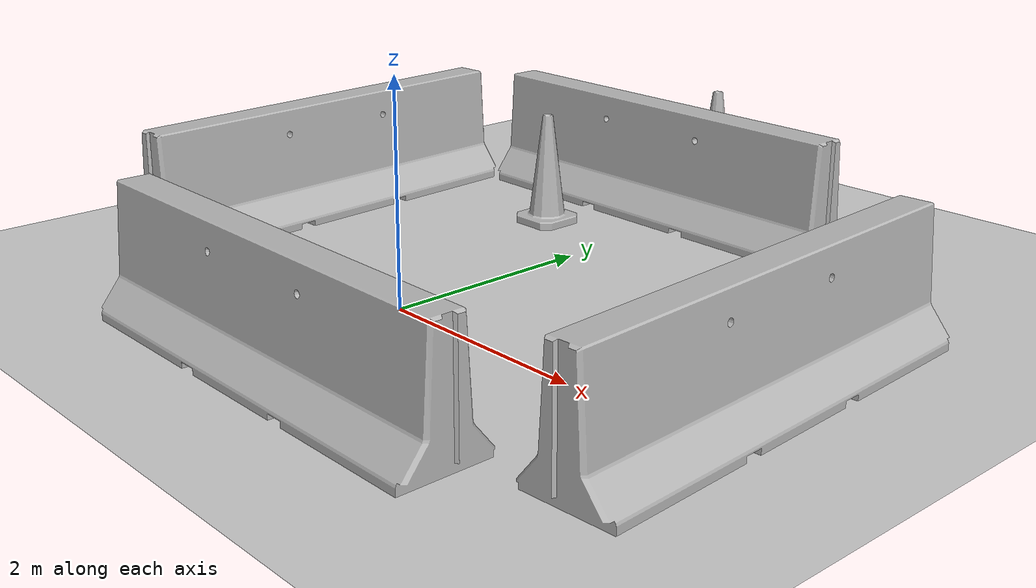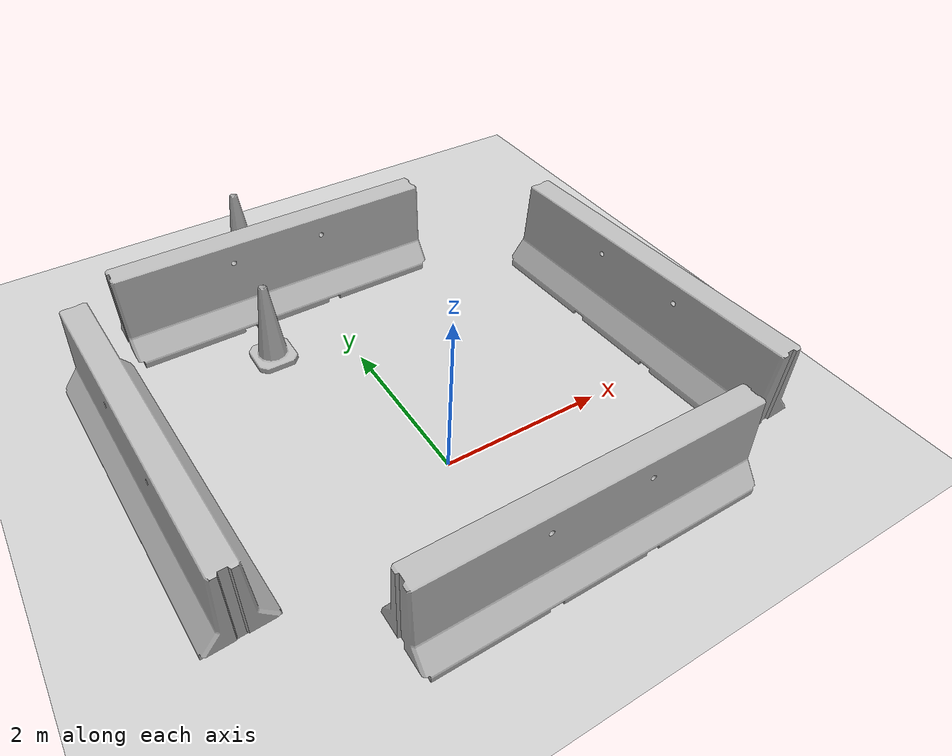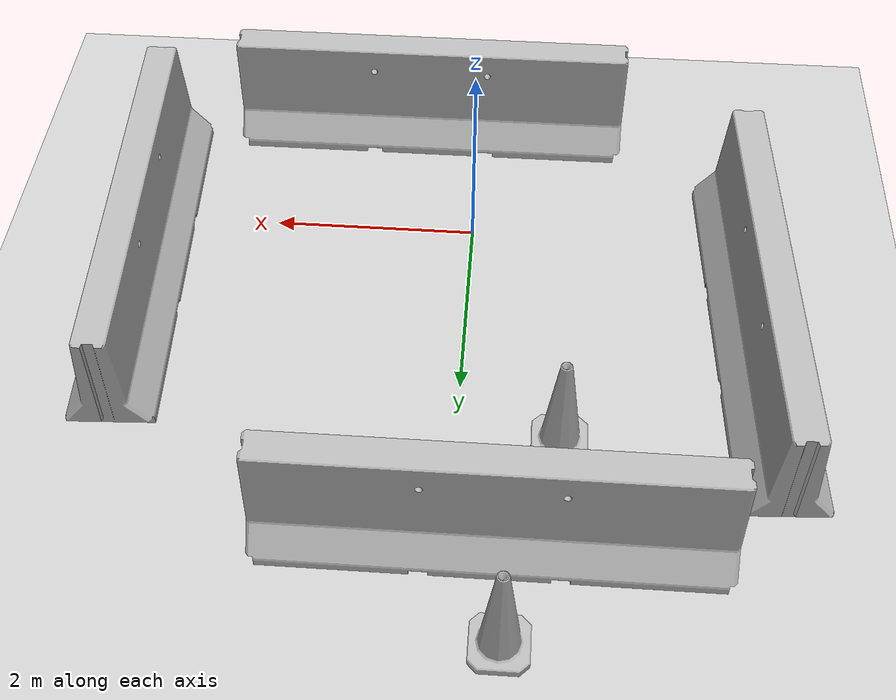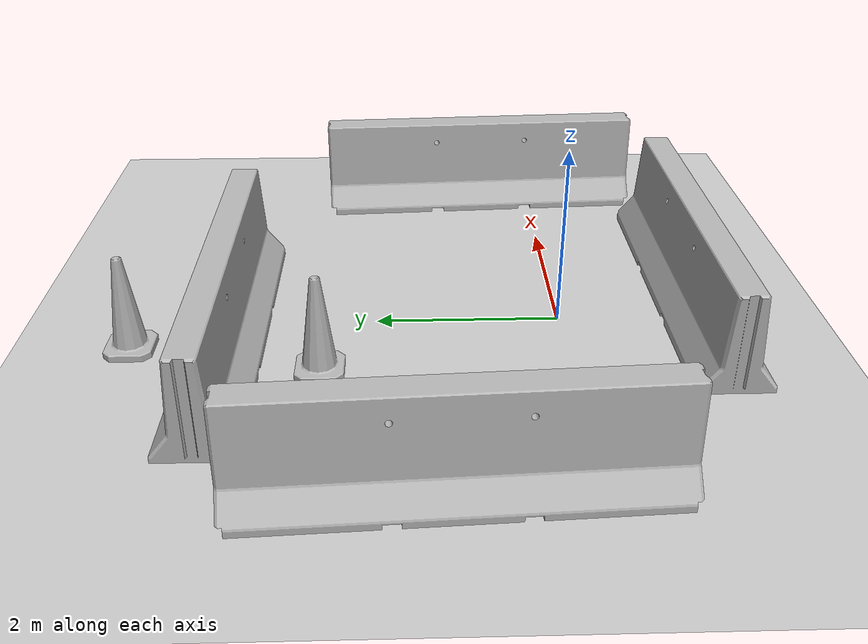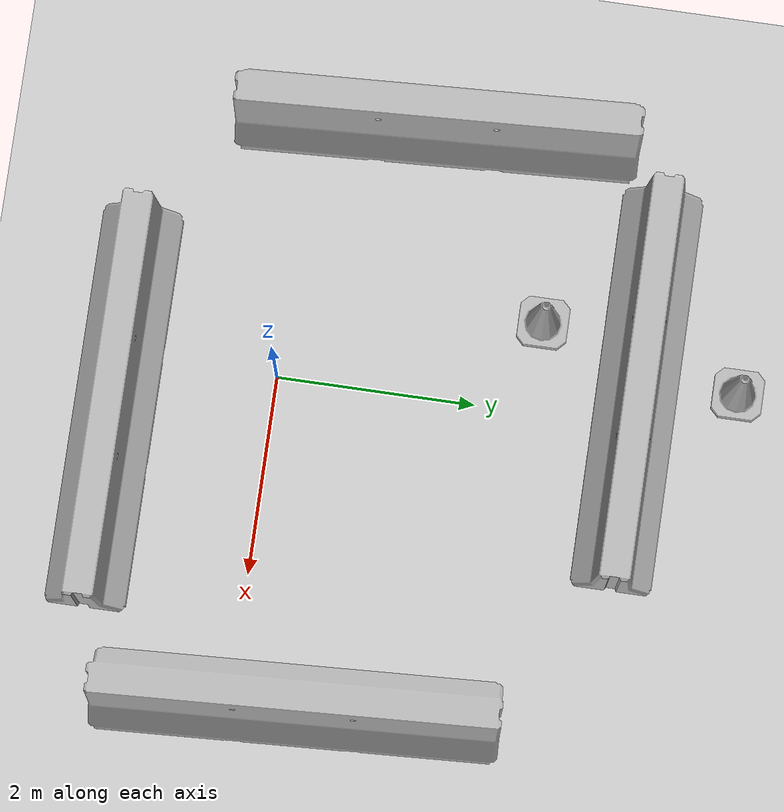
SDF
<sdf version="1.7">
 <world name="default">
  <light name="sun" type="directional">
   <pose>0 0 10 0 -0 0</pose>
   <diffuse>0.8 0.8 0.8 1</diffuse>
   <specular>0.2 0.2 0.2 1</specular>
   <attenuation>
    <range>1000</range>
    <constant>0.9</constant>
    <linear>0.01</linear>
    <quadratic>0.001</quadratic>
   </attenuation>
   <direction>-0.5 0.1 -0.9</direction>
   <spot><inner_angle>0</inner_angle><outer_angle>0</outer_angle><falloff>0</falloff></spot>
  </light>
  <model name="ground_plane">
   <static>1</static>
   <link name="link">
    <collision name="collision">
     <geometry><plane><normal>0 0 1</normal><size>100 100</size></plane></geometry>
     <surface>
      <contact><collide_bitmask>65535</collide_bitmask></contact>
      <friction><ode><mu>100</mu><mu2>50</mu2></ode></friction>
     </surface>
    </collision>
    <visual name="visual">
     <cast_shadows>0</cast_shadows>
     <geometry><plane><normal>0 0 1</normal><size>100 100</size></plane></geometry>
     <material>
      <script><uri>file://media/materials/scripts/gazebo.material</uri><name>Gazebo/Grey</name></script>
     </material>
    </visual>
   </link>
  </model>
  <scene><ambient>0 0 0 1</ambient><shadows>0</shadows><background>0.7 0.7 0.7 1</background></scene>
  <gravity>0 0 -9.8</gravity>
  <magnetic_field>6e-06 2.3e-05 -4.2e-05</magnetic_field>
  <atmosphere type="adiabatic"/>
  <physics type="ode">
   <max_step_size>0.001</max_step_size>
   <real_time_factor>1</real_time_factor>
   <real_time_update_rate>1000</real_time_update_rate>
  </physics>
  <spherical_coordinates>
   <surface_model>EARTH_WGS84</surface_model>
   <latitude_deg>0</latitude_deg>
   <longitude_deg>0</longitude_deg>
   <elevation>0</elevation>
   <heading_deg>0</heading_deg>
  </spherical_coordinates>
  <model name="Construction Cone">
   <link name="link">
    <collision name="collision">
     <geometry>
      <mesh><scale>10 10 10</scale><uri>model://construction_cone/meshes/construction_cone.dae</uri></mesh>
     </geometry>
    </collision>
    <visual name="visual">
     <geometry>
      <mesh><scale>10 10 10</scale><uri>model://construction_cone/meshes/construction_cone.dae</uri></mesh>
     </geometry>
    </visual>
    <inertial>
     <inertia><ixx>1</ixx><ixy>0</ixy><ixz>0</ixz><iyy>1</iyy><iyz>0</iyz><izz>1</izz></inertia>
     <mass>1</mass>
    </inertial>
   </link>
   <pose>-0.920411 2.56777 -0 0 -1e-06 0</pose>
  </model>
  <model name="Construction Cone_0">
   <link name="link">
    <collision name="collision">
     <geometry>
      <mesh><scale>10 10 10</scale><uri>model://construction_cone/meshes/construction_cone.dae</uri></mesh>
     </geometry>
    </collision>
    <visual name="visual">
     <geometry>
      <mesh><scale>10 10 10</scale><uri>model://construction_cone/meshes/construction_cone.dae</uri></mesh>
     </geometry>
    </visual>
    <inertial>
     <inertia><ixx>1</ixx><ixy>0</ixy><ixz>0</ixz><iyy>1</iyy><iyz>0</iyz><izz>1</izz></inertia>
     <mass>1</mass>
    </inertial>
   </link>
   <pose>-0.4728 4.59652 -0 0 -0 0</pose>
  </model>
  <model name="jersey_barrier">
   <static>1</static>
   <link name="link">
    <visual name="visual">
     <geometry><mesh><uri>model://jersey_barrier/meshes/jersey_barrier.dae</uri></mesh></geometry>
    </visual>
    <collision name="upright">
     <pose>0 0 0.5715 0 -0 0</pose>
     <geometry><box><size>4.06542 0.3063 1.143</size></box></geometry>
    </collision>
    <collision name="base">
     <pose>0 0 0.032258 0 -0 0</pose>
     <geometry><box><size>4.06542 0.8107 0.064516</size></box></geometry>
    </collision>
    <collision name="base2">
     <pose>0 0 0.1 0 -0 0</pose>
     <geometry><box><size>4.06542 0.65 0.1</size></box></geometry>
    </collision>
    <collision name="base3">
     <pose>0 0 0.2 0 -0 0</pose>
     <geometry><box><size>4.06542 0.5 0.1</size></box></geometry>
    </collision>
    <collision name="left-angle">
     <pose>0 -0.224 0.2401 0.9 -0 0</pose>
     <geometry><box><size>4.06542 0.5 0.064516</size></box></geometry>
    </collision>
    <collision name="right-angle">
     <pose>0 0.224 0.2401 -0.9 0 0</pose>
     <geometry><box><size>4.06542 0.5 0.064516</size></box></geometry>
    </collision>
   </link>
   <pose>0.530651 -1.56544 0 0 -0 0</pose>
  </model>
  <model name="jersey_barrier_0">
   <static>1</static>
   <link name="link">
    <visual name="visual">
     <geometry><mesh><uri>model://jersey_barrier/meshes/jersey_barrier.dae</uri></mesh></geometry>
    </visual>
    <collision name="upright">
     <pose>0 0 0.5715 0 -0 0</pose>
     <geometry><box><size>4.06542 0.3063 1.143</size></box></geometry>
    </collision>
    <collision name="base">
     <pose>0 0 0.032258 0 -0 0</pose>
     <geometry><box><size>4.06542 0.8107 0.064516</size></box></geometry>
    </collision>
    <collision name="base2">
     <pose>0 0 0.1 0 -0 0</pose>
     <geometry><box><size>4.06542 0.65 0.1</size></box></geometry>
    </collision>
    <collision name="base3">
     <pose>0 0 0.2 0 -0 0</pose>
     <geometry><box><size>4.06542 0.5 0.1</size></box></geometry>
    </collision>
    <collision name="left-angle">
     <pose>0 -0.224 0.2401 0.9 -0 0</pose>
     <geometry><box><size>4.06542 0.5 0.064516</size></box></geometry>
    </collision>
    <collision name="right-angle">
     <pose>0 0.224 0.2401 -0.9 0 0</pose>
     <geometry><box><size>4.06542 0.5 0.064516</size></box></geometry>
    </collision>
   </link>
   <pose>-0.361964 3.59161 0 0 -0 0</pose>
  </model>
  <model name="jersey_barrier_1">
   <static>1</static>
   <link name="link">
    <visual name="visual">
     <geometry><mesh><uri>model://jersey_barrier/meshes/jersey_barrier.dae</uri></mesh></geometry>
    </visual>
    <collision name="upright">
     <pose>0 0 0.5715 0 -0 0</pose>
     <geometry><box><size>4.06542 0.3063 1.143</size></box></geometry>
    </collision>
    <collision name="base">
     <pose>0 0 0.032258 0 -0 0</pose>
     <geometry><box><size>4.06542 0.8107 0.064516</size></box></geometry>
    </collision>
    <collision name="base2">
     <pose>0 0 0.1 0 -0 0</pose>
     <geometry><box><size>4.06542 0.65 0.1</size></box></geometry>
    </collision>
    <collision name="base3">
     <pose>0 0 0.2 0 -0 0</pose>
     <geometry><box><size>4.06542 0.5 0.1</size></box></geometry>
    </collision>
    <collision name="left-angle">
     <pose>0 -0.224 0.2401 0.9 -0 0</pose>
     <geometry><box><size>4.06542 0.5 0.064516</size></box></geometry>
    </collision>
    <collision name="right-angle">
     <pose>0 0.224 0.2401 -0.9 0 0</pose>
     <geometry><box><size>4.06542 0.5 0.064516</size></box></geometry>
    </collision>
   </link>
   <pose>3.23206 0.661423 0 -0.004615 0.000235 1.62162</pose>
  </model>
  <model name="jersey_barrier_2">
   <static>1</static>
   <link name="link">
    <visual name="visual">
     <geometry><mesh><uri>model://jersey_barrier/meshes/jersey_barrier.dae</uri></mesh></geometry>
    </visual>
    <collision name="upright">
     <pose>0 0 0.5715 0 -0 0</pose>
     <geometry><box><size>4.06542 0.3063 1.143</size></box></geometry>
    </collision>
    <collision name="base">
     <pose>0 0 0.032258 0 -0 0</pose>
     <geometry><box><size>4.06542 0.8107 0.064516</size></box></geometry>
    </collision>
    <collision name="base2">
     <pose>0 0 0.1 0 -0 0</pose>
     <geometry><box><size>4.06542 0.65 0.1</size></box></geometry>
    </collision>
    <collision name="base3">
     <pose>0 0 0.2 0 -0 0</pose>
     <geometry><box><size>4.06542 0.5 0.1</size></box></geometry>
    </collision>
    <collision name="left-angle">
     <pose>0 -0.224 0.2401 0.9 -0 0</pose>
     <geometry><box><size>4.06542 0.5 0.064516</size></box></geometry>
    </collision>
    <collision name="right-angle">
     <pose>0 0.224 0.2401 -0.9 0 0</pose>
     <geometry><box><size>4.06542 0.5 0.064516</size></box></geometry>
    </collision>
   </link>
   <pose>-2.76986 1.24425 0 0 0 -1.52112</pose>
  </model>
 </world>
</sdf>
